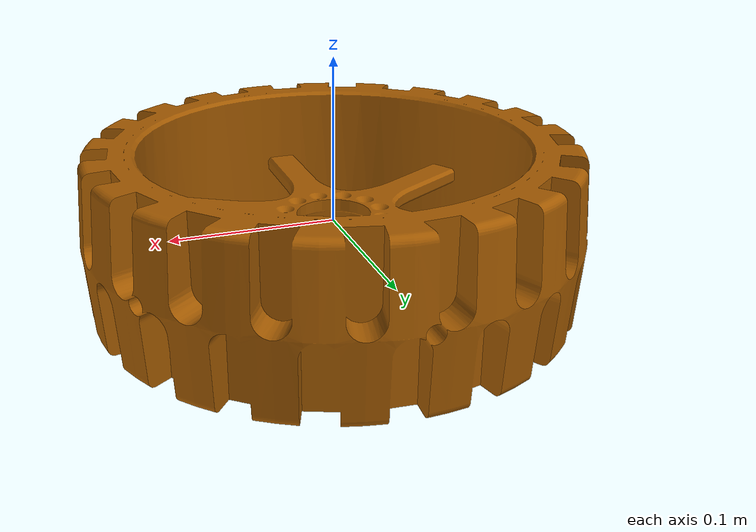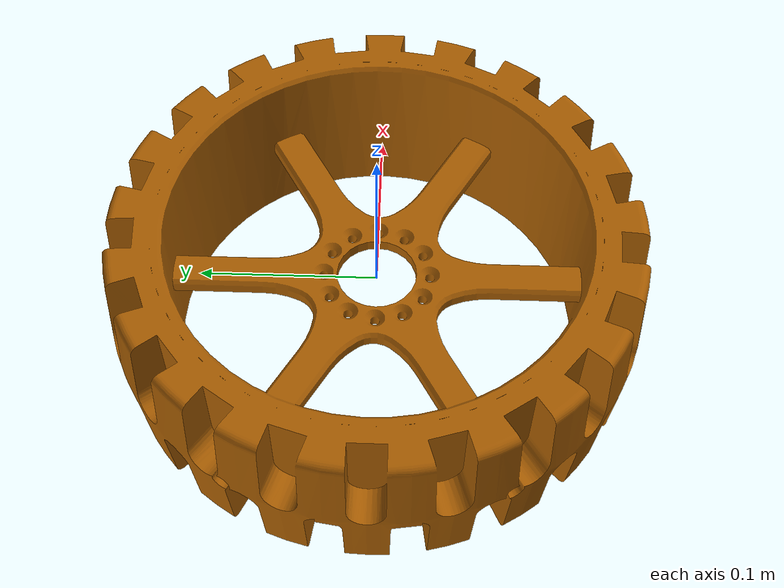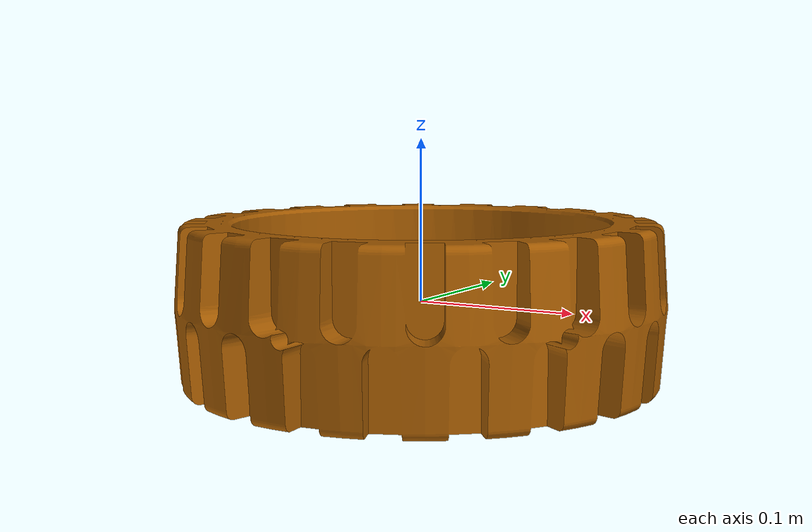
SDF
<?xml version="1.0" ?>
<sdf version="1.4">
    <model name="wheel">
		<link name="link">
            <inertial>
                <mass>6.64</mass>
                <inertia>
                    <ixx>0.0599</ixx>
                    <ixy>0.0</ixy>
                    <ixz>0.0</ixz>
                    <iyy>0.0599</iyy>
                    <iyz>0.0</iyz>
                    <izz>0.1197</izz>
                </inertia>
            </inertial>
            <velocity_decay>
				<linear>0.0</linear>
				<angular>0.01</angular>
            </velocity_decay>
            <self_collide>true</self_collide>
            <collision name="collision">
                <geometry>
                    <cylinder>
                        <radius>0.1495</radius>
                        <length>0.1</length>
                    </cylinder>
                </geometry>
                <surface>
                    <friction>
                        <ode>
                            <mu>0.5</mu>
                            <mu2>0.5</mu2>
                            <slip1>0.2</slip1>
                            <slip2>0.2</slip2>
                        </ode>
                    </friction>
	                <contact>
						<ode>
							<soft_cfm>0.005</soft_cfm>
						</ode>
	                </contact>
                </surface>
            </collision>
            <visual name="visual">
                <geometry>
                    <mesh>
                        <uri>model://wheel/meshes/wheel.dae</uri>
                    </mesh>
                </geometry>
                <material>
                    <diffuse>0.655 0.361 0.004 1.0</diffuse>
                </material>
            </visual>
            <velocity_decay>
                <linear>0</linear>
                <angular>0</angular>
            </velocity_decay>
        </link>
	</model>
</sdf>
